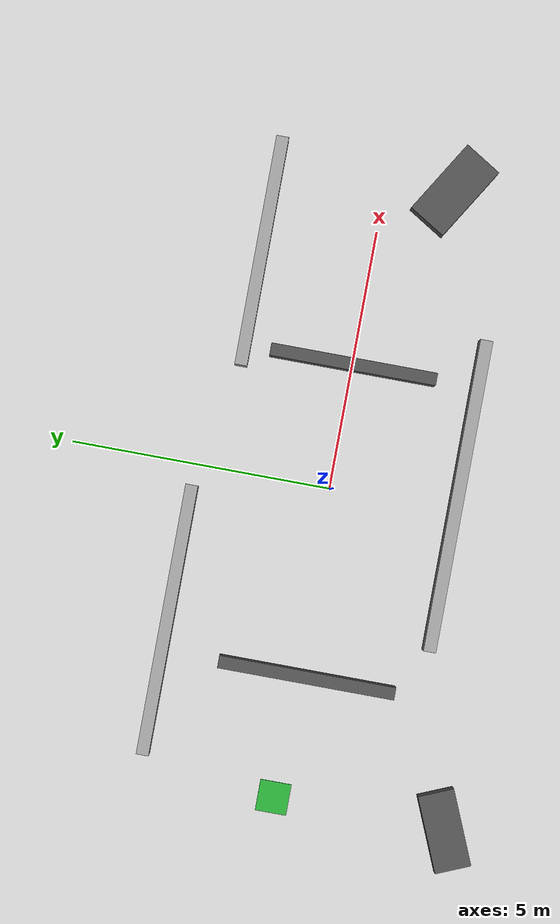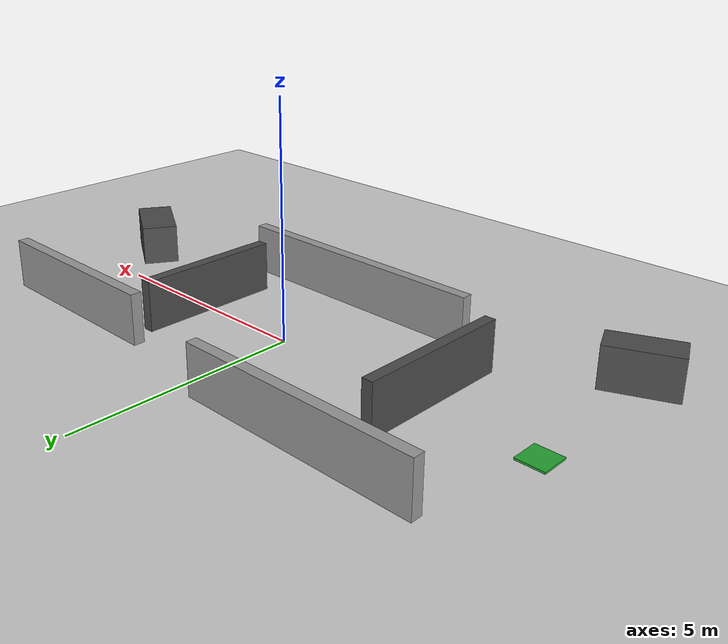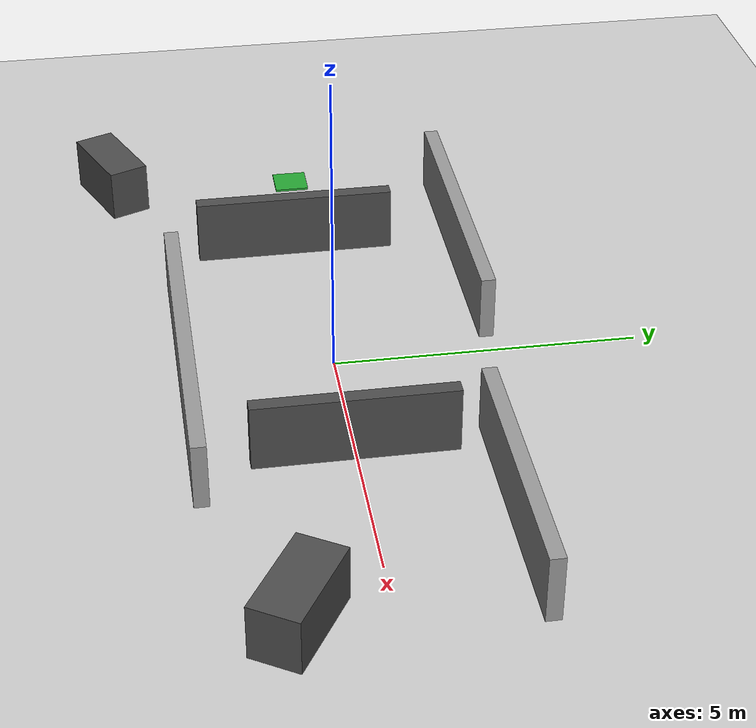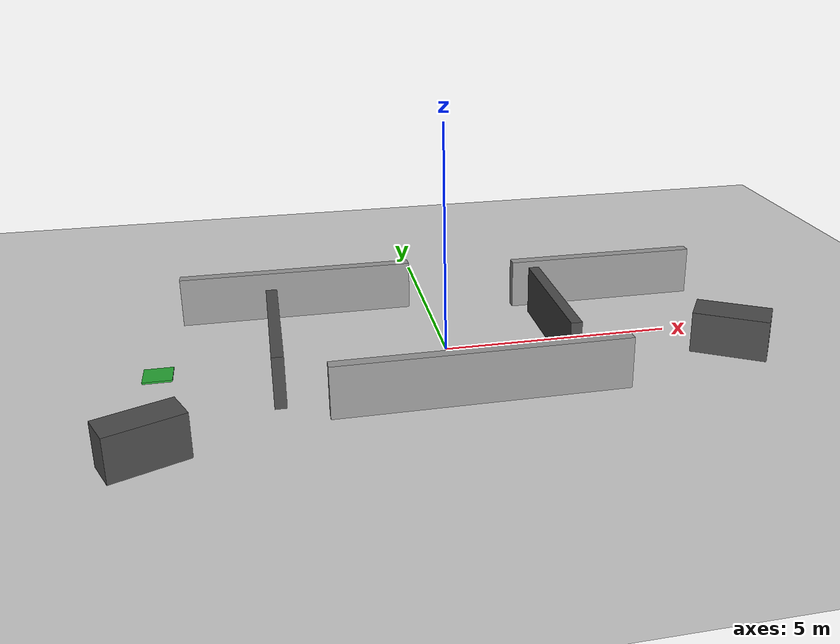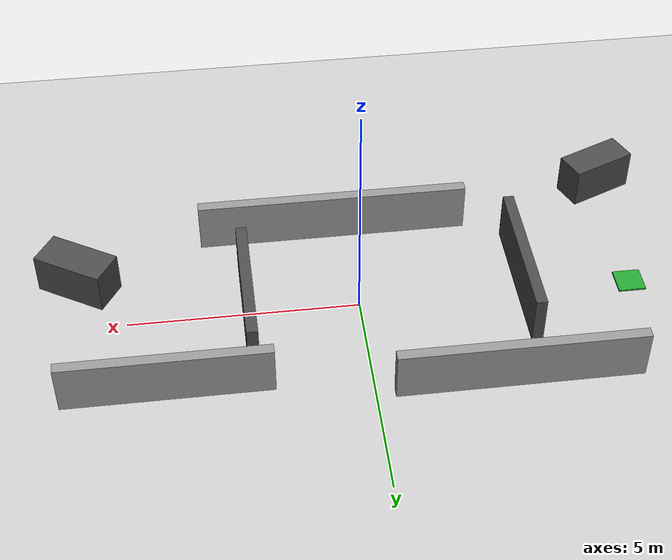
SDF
<?xml version="1.0"?>
<sdf version="1.6">
  <world name="thermal_nav_zigzag_corridors">
    <physics type="ode">
      <real_time_update_rate>1000</real_time_update_rate>
      <max_step_size>0.001</max_step_size>
      <real_time_factor>1</real_time_factor>
    </physics>

    <include><uri>model://sun</uri></include>
    <include><uri>model://ground_plane</uri></include>

    <scene>
      <ambient>0.46 0.46 0.46 1</ambient>
      <background>0.18 0.20 0.21 1</background>
      <shadows>false</shadows>
    </scene>

    <gui fullscreen="0">
      <camera name="user_camera">
        <pose>0 0 24 0 1.5707 0</pose>
        <view_controller>orbit</view_controller>
      </camera>
    </gui>

    <model name="robot_start_marker">
      <static>true</static>
      <pose>-6.0 0 0 0 0 0</pose>
      <link name="link">
        <visual name="pad">
          <pose>0 0 0.02 0 0 0</pose>
          <geometry><box><size>0.6 0.6 0.04</size></box></geometry>
          <material><script><uri>file://media/materials/scripts/gazebo.material</uri><name>Gazebo/Green</name></script></material>
        </visual>
      </link>
    </model>

    <model name="zig_wall_north_west">
      <static>true</static>
      <pose>-3.0 2.6 0.55 0 0 0</pose>
      <link name="link">
        <collision name="collision"><geometry><box><size>5.2 0.24 1.1</size></box></geometry></collision>
        <visual name="visual"><geometry><box><size>5.2 0.24 1.1</size></box></geometry><material><script><uri>file://media/materials/scripts/gazebo.material</uri><name>Gazebo/Grey</name></script></material></visual>
      </link>
    </model>

    <model name="zig_wall_south_mid">
      <static>true</static>
      <pose>0.3 -2.4 0.55 0 0 0</pose>
      <link name="link">
        <collision name="collision"><geometry><box><size>6.0 0.24 1.1</size></box></geometry></collision>
        <visual name="visual"><geometry><box><size>6.0 0.24 1.1</size></box></geometry><material><script><uri>file://media/materials/scripts/gazebo.material</uri><name>Gazebo/Grey</name></script></material></visual>
      </link>
    </model>

    <model name="zig_wall_north_east">
      <static>true</static>
      <pose>4.2 2.1 0.55 0 0 0</pose>
      <link name="link">
        <collision name="collision"><geometry><box><size>4.4 0.24 1.1</size></box></geometry></collision>
        <visual name="visual"><geometry><box><size>4.4 0.24 1.1</size></box></geometry><material><script><uri>file://media/materials/scripts/gazebo.material</uri><name>Gazebo/Grey</name></script></material></visual>
      </link>
    </model>

    <model name="zig_vertical_west">
      <static>true</static>
      <pose>-3.6 -0.2 0.55 0 0 1.5708</pose>
      <link name="link">
        <collision name="collision"><geometry><box><size>3.4 0.24 1.1</size></box></geometry></collision>
        <visual name="visual"><geometry><box><size>3.4 0.24 1.1</size></box></geometry><material><script><uri>file://media/materials/scripts/gazebo.material</uri><name>Gazebo/DarkGrey</name></script></material></visual>
      </link>
    </model>

    <model name="zig_vertical_east">
      <static>true</static>
      <pose>2.4 0.0 0.55 0 0 1.5708</pose>
      <link name="link">
        <collision name="collision"><geometry><box><size>3.2 0.24 1.1</size></box></geometry></collision>
        <visual name="visual"><geometry><box><size>3.2 0.24 1.1</size></box></geometry><material><script><uri>file://media/materials/scripts/gazebo.material</uri><name>Gazebo/DarkGrey</name></script></material></visual>
      </link>
    </model>

    <model name="zig_island_southwest">
      <static>true</static>
      <pose>-6.0 -3.3 0.45 0 0 0.4</pose>
      <link name="link">
        <collision name="collision"><geometry><box><size>1.5 0.7 0.9</size></box></geometry></collision>
        <visual name="visual"><geometry><box><size>1.5 0.7 0.9</size></box></geometry><material><script><uri>file://media/materials/scripts/gazebo.material</uri><name>Gazebo/DarkGrey</name></script></material></visual>
      </link>
    </model>

    <model name="zig_island_east">
      <static>true</static>
      <pose>6.0 -1.3 0.45 0 0 -0.55</pose>
      <link name="link">
        <collision name="collision"><geometry><box><size>1.6 0.8 0.9</size></box></geometry></collision>
        <visual name="visual"><geometry><box><size>1.6 0.8 0.9</size></box></geometry><material><script><uri>file://media/materials/scripts/gazebo.material</uri><name>Gazebo/DarkGrey</name></script></material></visual>
      </link>
    </model>
  </world>
</sdf>
